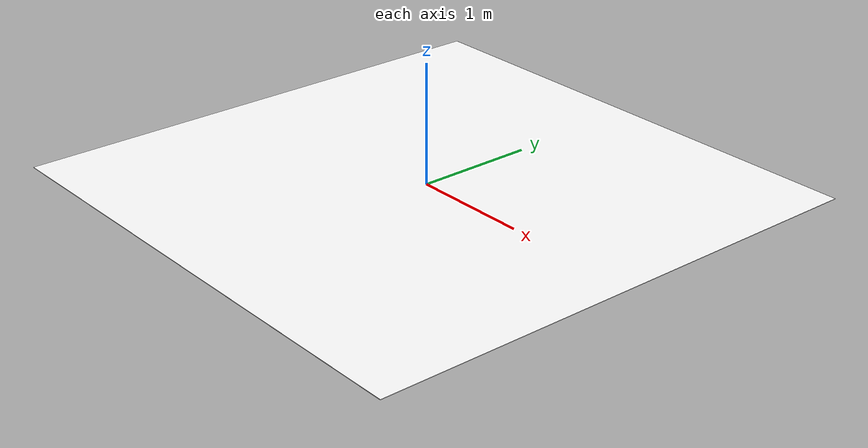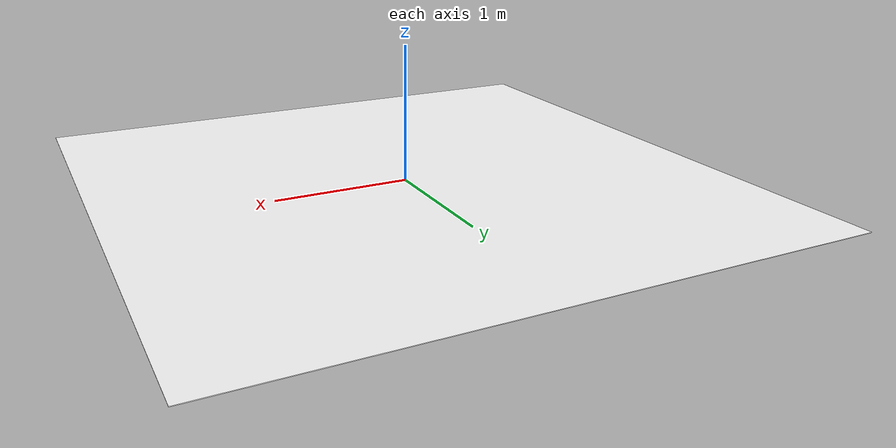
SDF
<?xml version="1.0"?>
<sdf version="1.9">
  <model name="apriltag_landing_pad">
    <static>true</static>
    <link name="pad_link">
      <collision name="pad_collision">
        <pose>0 0 0.005 0 0 0</pose>
        <geometry>
          <box>
            <size>4.4 4.4 0.01</size>
          </box>
        </geometry>
      </collision>
      <visual name="tag_visual">
        <pose>0 0 0.011 0 0 0</pose>
        <cast_shadows>false</cast_shadows>
        <geometry>
          <plane>
            <normal>0 0 1</normal>
            <size>4.4 4.4</size>
          </plane>
        </geometry>
        <material>
          <ambient>1 1 1 1</ambient>
          <diffuse>1 1 1 1</diffuse>
          <pbr>
            <metal>
              <albedo_map>
                model://apriltag_landing_pad/materials/textures/tagStandard41h12-id0-quiet-zone.png
              </albedo_map>
              <metalness>0.0</metalness>
              <roughness>1.0</roughness>
            </metal>
          </pbr>
        </material>
      </visual>
    </link>
  </model>
</sdf>
